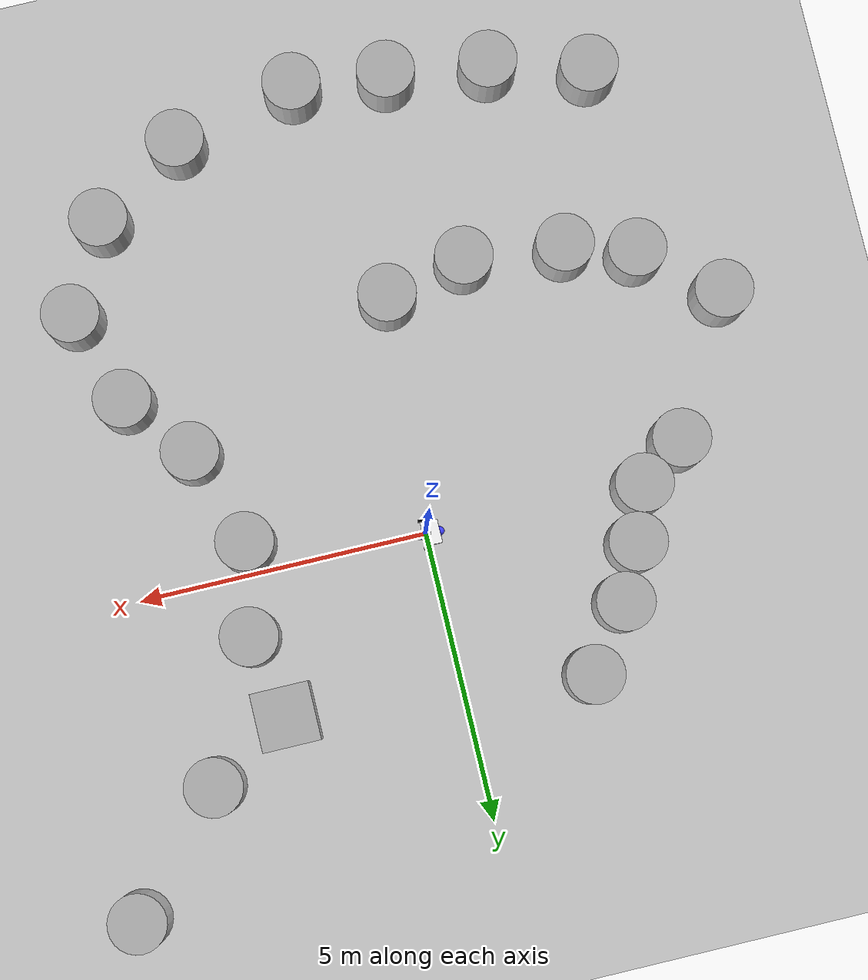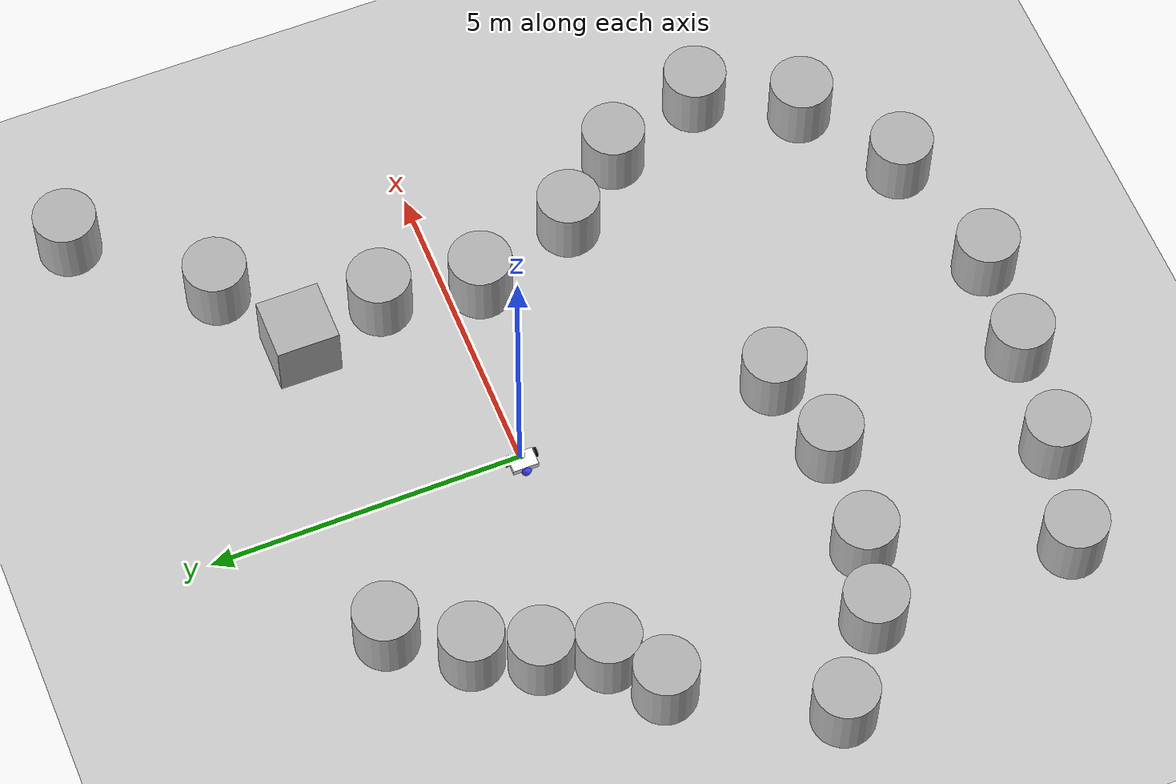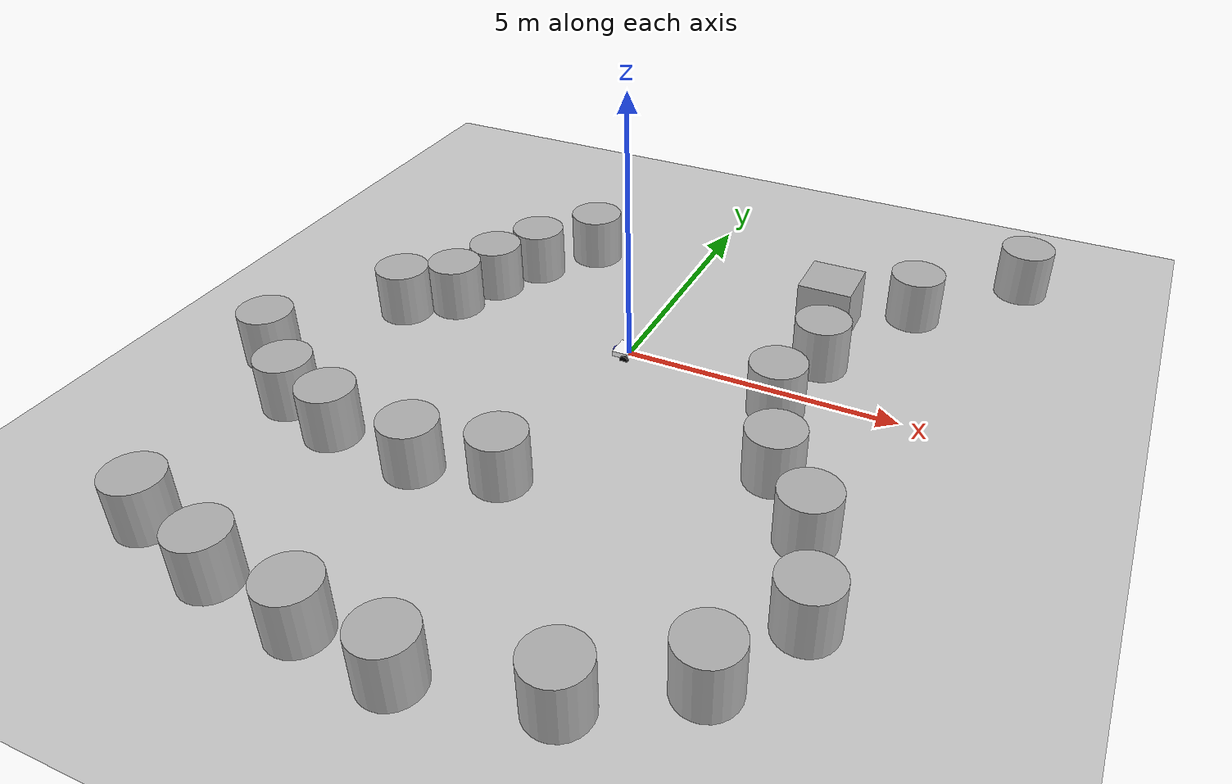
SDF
<sdf version='1.10'>
  <world name='obstacles'>
    <physics name='1ms' type='ignored'>
      <max_step_size>0.001</max_step_size>
      <real_time_factor>1</real_time_factor>
      <real_time_update_rate>1000</real_time_update_rate>
    </physics>
    <plugin name='gz::sim::systems::Physics' filename='gz-sim-physics-system'/>
    <plugin name='gz::sim::systems::UserCommands' filename='gz-sim-user-commands-system'/>
    <plugin name='gz::sim::systems::SceneBroadcaster' filename='gz-sim-scene-broadcaster-system'/>
    <plugin name='gz::sim::systems::Contact' filename='gz-sim-contact-system'/>

	   <plugin
	      filename="gz-sim-sensors-system"
	      name="gz::sim::systems::Sensors">
	      <render_engine>ogre2</render_engine>
	    </plugin>

    <!-- Moving Forward-->
	<plugin filename="gz-sim-triggered-publisher-system"
		name="gz::sim::systems::TriggeredPublisher">
	    <input type="gz.msgs.Int32" topic="/keyboard/keypress">
	    <match field="data">16777235</match>
	    </input>
	    <output type="gz.msgs.Twist" topic="/cmd_vel">
	    linear: {x: 3}, angular: {z: 0.0}
	    </output>
	</plugin>

	<plugin filename="gz-sim-triggered-publisher-system"
		name="gz::sim::systems::TriggeredPublisher">
	    <input type="gz.msgs.Int32" topic="/keyboard/keypress">
		<match field="data">16777237</match>
	    </input>
	    <output type="gz.msgs.Twist" topic="/cmd_vel">
		linear: {x: -3}, angular: {z: 0.0}
	    </output>
	</plugin>

	<plugin filename="gz-sim-triggered-publisher-system"
		name="gz::sim::systems::TriggeredPublisher">
	    <input type="gz.msgs.Int32" topic="/keyboard/keypress">
		<match field="data">16777234</match>
	    </input>
	    <output type="gz.msgs.Twist" topic="/cmd_vel">
		linear: {x: 0.0}, angular: {z: 5}
	    </output>
	</plugin>

	<plugin filename="gz-sim-triggered-publisher-system"
		name="gz::sim::systems::TriggeredPublisher">
	    <input type="gz.msgs.Int32" topic="/keyboard/keypress">
		<match field="data">16777236</match>
	    </input>
	    <output type="gz.msgs.Twist" topic="/cmd_vel">
		linear: {x: 0.0}, angular: {z: -5}
	    </output>
	</plugin>

    <gravity>0 0 -9.8000000000000007</gravity>
    <magnetic_field>5.5644999999999998e-06 2.2875799999999999e-05 -4.2388400000000002e-05</magnetic_field>
    <atmosphere type='adiabatic'/>
    <scene>
      <ambient>0.400000006 0.400000006 0.400000006 1</ambient>
      <background>0.699999988 0.699999988 0.699999988 1</background>
      <shadows>true</shadows>
    </scene>
    <model name='ground_plane'>
      <static>true</static>
      <link name='link'>
        <collision name='collision'>
          <geometry>
            <plane>
              <normal>0 0 1</normal>
              <size>100 100</size>
            </plane>
          </geometry>
          <surface>
            <friction>
              <ode/>
            </friction>
            <bounce/>
            <contact/>
          </surface>
        </collision>
        <visual name='visual'>
          <geometry>
            <plane>
              <normal>0 0 1</normal>
              <size>100 100</size>
            </plane>
          </geometry>
          <material>
            <ambient>0.800000012 0.800000012 0.800000012 1</ambient>
            <diffuse>0.800000012 0.800000012 0.800000012 1</diffuse>
            <specular>0.800000012 0.800000012 0.800000012 1</specular>
          </material>
        </visual>
        <pose>0 0 0 0 0 0</pose>
        <inertial>
          <pose>0 0 0 0 0 0</pose>
          <mass>1</mass>
          <inertia>
            <ixx>1</ixx>
            <ixy>0</ixy>
            <ixz>0</ixz>
            <iyy>1</iyy>
            <iyz>0</iyz>
            <izz>1</izz>
          </inertia>
        </inertial>
        <enable_wind>false</enable_wind>
      </link>
      <pose>0 0 0 0 0 0</pose>
      <self_collide>false</self_collide>
    </model>
    <model name='box'>
      <pose>2.9936513787700321 2.4796181568476832 0.5 0 0 0</pose>
      <link name='box_link'>
        <inertial>
          <inertia>
            <ixx>0.16666</ixx>
            <ixy>0</ixy>
            <ixz>0</ixz>
            <iyy>0.16666</iyy>
            <iyz>0</iyz>
            <izz>0.16666</izz>
          </inertia>
          <mass>1</mass>
          <pose>0 0 0 0 0 0</pose>
        </inertial>
        <collision name='box_collision'>
          <geometry>
            <box>
              <size>1 1 1</size>
            </box>
          </geometry>
          <surface>
            <friction>
              <ode/>
            </friction>
            <bounce/>
            <contact/>
          </surface>
        </collision>
        <visual name='box_visual'>
          <geometry>
            <box>
              <size>1 1 1</size>
            </box>
          </geometry>
          <material>
            <ambient>0.300000012 0.300000012 0.300000012 1</ambient>
            <diffuse>0.699999988 0.699999988 0.699999988 1</diffuse>
            <specular>1 1 1 1</specular>
          </material>
        </visual>
        <pose>0 0 0 0 0 0</pose>
        <enable_wind>false</enable_wind>
      </link>
      <static>false</static>
      <self_collide>false</self_collide>
    </model>
    <model name='cylinder'>
      <pose>3.2780801121539476 1.0477184740221883 0.5 0 0 0</pose>
      <link name='cylinder_link'>
        <inertial>
          <inertia>
            <ixx>0.14580000000000001</ixx>
            <ixy>0</ixy>
            <ixz>0</ixz>
            <iyy>0.14580000000000001</iyy>
            <iyz>0</iyz>
            <izz>0.125</izz>
          </inertia>
          <mass>1</mass>
          <pose>0 0 0 0 0 0</pose>
        </inertial>
        <collision name='cylinder_collision'>
          <geometry>
            <cylinder>
              <radius>0.5</radius>
              <length>1</length>
            </cylinder>
          </geometry>
          <surface>
            <friction>
              <ode/>
            </friction>
            <bounce/>
            <contact/>
          </surface>
        </collision>
        <visual name='cylinder_visual'>
          <geometry>
            <cylinder>
              <radius>0.5</radius>
              <length>1</length>
            </cylinder>
          </geometry>
          <material>
            <ambient>0.300000012 0.300000012 0.300000012 1</ambient>
            <diffuse>0.699999988 0.699999988 0.699999988 1</diffuse>
            <specular>1 1 1 1</specular>
          </material>
        </visual>
        <pose>0 0 0 0 0 0</pose>
        <enable_wind>false</enable_wind>
      </link>
      <static>false</static>
      <self_collide>false</self_collide>
    </model>
    <model name='cylinder_0'>
      <pose>2.9936498661354811 -0.51843391047460297 0.5 0 0 0</pose>
      <link name='cylinder_link'>
        <inertial>
          <inertia>
            <ixx>0.14580000000000001</ixx>
            <ixy>0</ixy>
            <ixz>0</ixz>
            <iyy>0.14580000000000001</iyy>
            <iyz>0</iyz>
            <izz>0.125</izz>
          </inertia>
          <mass>1</mass>
          <pose>0 0 0 0 0 0</pose>
        </inertial>
        <collision name='cylinder_collision'>
          <geometry>
            <cylinder>
              <radius>0.5</radius>
              <length>1</length>
            </cylinder>
          </geometry>
          <surface>
            <friction>
              <ode/>
            </friction>
            <bounce/>
            <contact/>
          </surface>
        </collision>
        <visual name='cylinder_visual'>
          <geometry>
            <cylinder>
              <radius>0.5</radius>
              <length>1</length>
            </cylinder>
          </geometry>
          <material>
            <ambient>0.300000012 0.300000012 0.300000012 1</ambient>
            <diffuse>0.699999988 0.699999988 0.699999988 1</diffuse>
            <specular>1 1 1 1</specular>
          </material>
        </visual>
        <pose>0 0 0 0 0 0</pose>
        <enable_wind>false</enable_wind>
      </link>
      <static>false</static>
      <self_collide>false</self_collide>
    </model>
    <model name='cylinder_1'>
      <pose>3.5417463006230321 -2.2063667398988911 0.5 0 0 0</pose>
      <link name='cylinder_link'>
        <inertial>
          <inertia>
            <ixx>0.14580000000000001</ixx>
            <ixy>0</ixy>
            <ixz>0</ixz>
            <iyy>0.14580000000000001</iyy>
            <iyz>0</iyz>
            <izz>0.125</izz>
          </inertia>
          <mass>1</mass>
        </inertial>
        <collision name='cylinder_collision'>
          <geometry>
            <cylinder>
              <radius>0.5</radius>
              <length>1</length>
            </cylinder>
          </geometry>
          <surface>
            <friction>
              <ode/>
            </friction>
            <bounce/>
            <contact/>
          </surface>
        </collision>
        <visual name='cylinder_visual'>
          <geometry>
            <cylinder>
              <radius>0.5</radius>
              <length>1</length>
            </cylinder>
          </geometry>
          <material>
            <ambient>0.300000012 0.300000012 0.300000012 1</ambient>
            <diffuse>0.699999988 0.699999988 0.699999988 1</diffuse>
            <specular>1 1 1 1</specular>
          </material>
        </visual>
      </link>
      <static>false</static>
      <self_collide>false</self_collide>
    </model>
    <model name='cylinder_2'>
      <pose>-0.29264709197542871 -4.0567506494964354 0.5 0 0 0</pose>
      <link name='cylinder_link'>
        <inertial>
          <inertia>
            <ixx>0.14580000000000001</ixx>
            <ixy>0</ixy>
            <ixz>0</ixz>
            <iyy>0.14580000000000001</iyy>
            <iyz>0</iyz>
            <izz>0.125</izz>
          </inertia>
          <mass>1</mass>
        </inertial>
        <collision name='cylinder_collision'>
          <geometry>
            <cylinder>
              <radius>0.5</radius>
              <length>1</length>
            </cylinder>
          </geometry>
          <surface>
            <friction>
              <ode/>
            </friction>
            <bounce/>
            <contact/>
          </surface>
        </collision>
        <visual name='cylinder_visual'>
          <geometry>
            <cylinder>
              <radius>0.5</radius>
              <length>1</length>
            </cylinder>
          </geometry>
          <material>
            <ambient>0.300000012 0.300000012 0.300000012 1</ambient>
            <diffuse>0.699999988 0.699999988 0.699999988 1</diffuse>
            <specular>1 1 1 1</specular>
          </material>
        </visual>
      </link>
      <static>false</static>
      <self_collide>false</self_collide>
    </model>
    <model name='cylinder_3'>
      <pose>-3.7364441269168136 0.073503863556268589 0.5 0 0 0</pose>
      <link name='cylinder_link'>
        <inertial>
          <inertia>
            <ixx>0.14580000000000001</ixx>
            <ixy>0</ixy>
            <ixz>0</ixz>
            <iyy>0.14580000000000001</iyy>
            <iyz>0</iyz>
            <izz>0.125</izz>
          </inertia>
          <mass>1</mass>
        </inertial>
        <collision name='cylinder_collision'>
          <geometry>
            <cylinder>
              <radius>0.5</radius>
              <length>1</length>
            </cylinder>
          </geometry>
          <surface>
            <friction>
              <ode/>
            </friction>
            <bounce/>
            <contact/>
          </surface>
        </collision>
        <visual name='cylinder_visual'>
          <geometry>
            <cylinder>
              <radius>0.5</radius>
              <length>1</length>
            </cylinder>
          </geometry>
          <material>
            <ambient>0.300000012 0.300000012 0.300000012 1</ambient>
            <diffuse>0.699999988 0.699999988 0.699999988 1</diffuse>
            <specular>1 1 1 1</specular>
          </material>
        </visual>
      </link>
      <static>false</static>
      <self_collide>false</self_collide>
    </model>
    <model name='cylinder_4'>
      <pose>-3.3980807020208257 1.0088354840781457 0.5 0 0 0</pose>
      <link name='cylinder_link'>
        <inertial>
          <inertia>
            <ixx>0.14580000000000001</ixx>
            <ixy>0</ixy>
            <ixz>0</ixz>
            <iyy>0.14580000000000001</iyy>
            <iyz>0</iyz>
            <izz>0.125</izz>
          </inertia>
          <mass>1</mass>
        </inertial>
        <collision name='cylinder_collision'>
          <geometry>
            <cylinder>
              <radius>0.5</radius>
              <length>1</length>
            </cylinder>
          </geometry>
          <surface>
            <friction>
              <ode/>
            </friction>
            <bounce/>
            <contact/>
          </surface>
        </collision>
        <visual name='cylinder_visual'>
          <geometry>
            <cylinder>
              <radius>0.5</radius>
              <length>1</length>
            </cylinder>
          </geometry>
          <material>
            <ambient>0.300000012 0.300000012 0.300000012 1</ambient>
            <diffuse>0.699999988 0.699999988 0.699999988 1</diffuse>
            <specular>1 1 1 1</specular>
          </material>
        </visual>
      </link>
      <static>false</static>
      <self_collide>false</self_collide>
    </model>
    <model name='cylinder_5'>
      <pose>-2.9554009128615899 1.9327412748815394 0.5 0 0 0</pose>
      <link name='cylinder_link'>
        <inertial>
          <inertia>
            <ixx>0.14580000000000001</ixx>
            <ixy>0</ixy>
            <ixz>0</ixz>
            <iyy>0.14580000000000001</iyy>
            <iyz>0</iyz>
            <izz>0.125</izz>
          </inertia>
          <mass>1</mass>
        </inertial>
        <collision name='cylinder_collision'>
          <geometry>
            <cylinder>
              <radius>0.5</radius>
              <length>1</length>
            </cylinder>
          </geometry>
          <surface>
            <friction>
              <ode/>
            </friction>
            <bounce/>
            <contact/>
          </surface>
        </collision>
        <visual name='cylinder_visual'>
          <geometry>
            <cylinder>
              <radius>0.5</radius>
              <length>1</length>
            </cylinder>
          </geometry>
          <material>
            <ambient>0.300000012 0.300000012 0.300000012 1</ambient>
            <diffuse>0.699999988 0.699999988 0.699999988 1</diffuse>
            <specular>1 1 1 1</specular>
          </material>
        </visual>
      </link>
      <static>false</static>
      <self_collide>false</self_collide>
    </model>
    <model name='cylinder_6'>
      <pose>-2.1750945004891538 2.9892591731895188 0.5 0 0 0</pose>
      <link name='cylinder_link'>
        <inertial>
          <inertia>
            <ixx>0.14580000000000001</ixx>
            <ixy>0</ixy>
            <ixz>0</ixz>
            <iyy>0.14580000000000001</iyy>
            <iyz>0</iyz>
            <izz>0.125</izz>
          </inertia>
          <mass>1</mass>
        </inertial>
        <collision name='cylinder_collision'>
          <geometry>
            <cylinder>
              <radius>0.5</radius>
              <length>1</length>
            </cylinder>
          </geometry>
          <surface>
            <friction>
              <ode/>
            </friction>
            <bounce/>
            <contact/>
          </surface>
        </collision>
        <visual name='cylinder_visual'>
          <geometry>
            <cylinder>
              <radius>0.5</radius>
              <length>1</length>
            </cylinder>
          </geometry>
          <material>
            <ambient>0.300000012 0.300000012 0.300000012 1</ambient>
            <diffuse>0.699999988 0.699999988 0.699999988 1</diffuse>
            <specular>1 1 1 1</specular>
          </material>
        </visual>
      </link>
      <static>false</static>
      <self_collide>false</self_collide>
    </model>
    <model name='cylinder_7'>
      <pose>-4.5268021579215159 -0.51124168392001335 0.5 0 0 0</pose>
      <link name='cylinder_link'>
        <inertial>
          <inertia>
            <ixx>0.14580000000000001</ixx>
            <ixy>0</ixy>
            <ixz>0</ixz>
            <iyy>0.14580000000000001</iyy>
            <iyz>0</iyz>
            <izz>0.125</izz>
          </inertia>
          <mass>1</mass>
        </inertial>
        <collision name='cylinder_collision'>
          <geometry>
            <cylinder>
              <radius>0.5</radius>
              <length>1</length>
            </cylinder>
          </geometry>
          <surface>
            <friction>
              <ode/>
            </friction>
            <bounce/>
            <contact/>
          </surface>
        </collision>
        <visual name='cylinder_visual'>
          <geometry>
            <cylinder>
              <radius>0.5</radius>
              <length>1</length>
            </cylinder>
          </geometry>
          <material>
            <ambient>0.300000012 0.300000012 0.300000012 1</ambient>
            <diffuse>0.699999988 0.699999988 0.699999988 1</diffuse>
            <specular>1 1 1 1</specular>
          </material>
        </visual>
      </link>
      <static>false</static>
      <self_collide>false</self_collide>
    </model>
    <model name='cylinder_8'>
      <pose>-1.7026880066687706 -4.3772045929497114 0.5 0 0 0</pose>
      <link name='cylinder_link'>
        <inertial>
          <inertia>
            <ixx>0.14580000000000001</ixx>
            <ixy>0</ixy>
            <ixz>0</ixz>
            <iyy>0.14580000000000001</iyy>
            <iyz>0</iyz>
            <izz>0.125</izz>
          </inertia>
          <mass>1</mass>
        </inertial>
        <collision name='cylinder_collision'>
          <geometry>
            <cylinder>
              <radius>0.5</radius>
              <length>1</length>
            </cylinder>
          </geometry>
          <surface>
            <friction>
              <ode/>
            </friction>
            <bounce/>
            <contact/>
          </surface>
        </collision>
        <visual name='cylinder_visual'>
          <geometry>
            <cylinder>
              <radius>0.5</radius>
              <length>1</length>
            </cylinder>
          </geometry>
          <material>
            <ambient>0.300000012 0.300000012 0.300000012 1</ambient>
            <diffuse>0.699999988 0.699999988 0.699999988 1</diffuse>
            <specular>1 1 1 1</specular>
          </material>
        </visual>
      </link>
      <static>false</static>
      <self_collide>false</self_collide>
    </model>
    <model name='cylinder_9'>
      <pose>-3.4192076754294458 -4.1947912403373291 0.5 0 0 0</pose>
      <link name='cylinder_link'>
        <inertial>
          <inertia>
            <ixx>0.14580000000000001</ixx>
            <ixy>0</ixy>
            <ixz>0</ixz>
            <iyy>0.14580000000000001</iyy>
            <iyz>0</iyz>
            <izz>0.125</izz>
          </inertia>
          <mass>1</mass>
        </inertial>
        <collision name='cylinder_collision'>
          <geometry>
            <cylinder>
              <radius>0.5</radius>
              <length>1</length>
            </cylinder>
          </geometry>
          <surface>
            <friction>
              <ode/>
            </friction>
            <bounce/>
            <contact/>
          </surface>
        </collision>
        <visual name='cylinder_visual'>
          <geometry>
            <cylinder>
              <radius>0.5</radius>
              <length>1</length>
            </cylinder>
          </geometry>
          <material>
            <ambient>0.300000012 0.300000012 0.300000012 1</ambient>
            <diffuse>0.699999988 0.699999988 0.699999988 1</diffuse>
            <specular>1 1 1 1</specular>
          </material>
        </visual>
      </link>
      <static>false</static>
      <self_collide>false</self_collide>
    </model>
    <model name='cylinder_10'>
      <pose>-4.5883211947311082 -3.8308697637389448 0.5 0 0 0</pose>
      <link name='cylinder_link'>
        <inertial>
          <inertia>
            <ixx>0.14580000000000001</ixx>
            <ixy>0</ixy>
            <ixz>0</ixz>
            <iyy>0.14580000000000001</iyy>
            <iyz>0</iyz>
            <izz>0.125</izz>
          </inertia>
          <mass>1</mass>
        </inertial>
        <collision name='cylinder_collision'>
          <geometry>
            <cylinder>
              <radius>0.5</radius>
              <length>1</length>
            </cylinder>
          </geometry>
          <surface>
            <friction>
              <ode/>
            </friction>
            <bounce/>
            <contact/>
          </surface>
        </collision>
        <visual name='cylinder_visual'>
          <geometry>
            <cylinder>
              <radius>0.5</radius>
              <length>1</length>
            </cylinder>
          </geometry>
          <material>
            <ambient>0.300000012 0.300000012 0.300000012 1</ambient>
            <diffuse>0.699999988 0.699999988 0.699999988 1</diffuse>
            <specular>1 1 1 1</specular>
          </material>
        </visual>
      </link>
      <static>false</static>
      <self_collide>false</self_collide>
    </model>
    <model name='cylinder_11'>
      <pose>-5.8409336358566808 -2.8065884830670731 0.5 0 0 0</pose>
      <link name='cylinder_link'>
        <inertial>
          <inertia>
            <ixx>0.14580000000000001</ixx>
            <ixy>0</ixy>
            <ixz>0</ixz>
            <iyy>0.14580000000000001</iyy>
            <iyz>0</iyz>
            <izz>0.125</izz>
          </inertia>
          <mass>1</mass>
        </inertial>
        <collision name='cylinder_collision'>
          <geometry>
            <cylinder>
              <radius>0.5</radius>
              <length>1</length>
            </cylinder>
          </geometry>
          <surface>
            <friction>
              <ode/>
            </friction>
            <bounce/>
            <contact/>
          </surface>
        </collision>
        <visual name='cylinder_visual'>
          <geometry>
            <cylinder>
              <radius>0.5</radius>
              <length>1</length>
            </cylinder>
          </geometry>
          <material>
            <ambient>0.300000012 0.300000012 0.300000012 1</ambient>
            <diffuse>0.699999988 0.699999988 0.699999988 1</diffuse>
            <specular>1 1 1 1</specular>
          </material>
        </visual>
      </link>
      <static>false</static>
      <self_collide>false</self_collide>
    </model>
    <model name='cylinder_12'>
      <pose>4.4102869636086197 3.3350607228576079 0.5 0 0 0</pose>
      <link name='cylinder_link'>
        <inertial>
          <inertia>
            <ixx>0.14580000000000001</ixx>
            <ixy>0</ixy>
            <ixz>0</ixz>
            <iyy>0.14580000000000001</iyy>
            <iyz>0</iyz>
            <izz>0.125</izz>
          </inertia>
          <mass>1</mass>
        </inertial>
        <collision name='cylinder_collision'>
          <geometry>
            <cylinder>
              <radius>0.5</radius>
              <length>1</length>
            </cylinder>
          </geometry>
          <surface>
            <friction>
              <ode/>
            </friction>
            <bounce/>
            <contact/>
          </surface>
        </collision>
        <visual name='cylinder_visual'>
          <geometry>
            <cylinder>
              <radius>0.5</radius>
              <length>1</length>
            </cylinder>
          </geometry>
          <material>
            <ambient>0.300000012 0.300000012 0.300000012 1</ambient>
            <diffuse>0.699999988 0.699999988 0.699999988 1</diffuse>
            <specular>1 1 1 1</specular>
          </material>
        </visual>
      </link>
      <static>false</static>
      <self_collide>false</self_collide>
    </model>
    <model name='cylinder_13'>
      <pose>6.1205690099241359 5.206047206925879 0.5 0 0 0</pose>
      <link name='cylinder_link'>
        <inertial>
          <inertia>
            <ixx>0.14580000000000001</ixx>
            <ixy>0</ixy>
            <ixz>0</ixz>
            <iyy>0.14580000000000001</iyy>
            <iyz>0</iyz>
            <izz>0.125</izz>
          </inertia>
          <mass>1</mass>
        </inertial>
        <collision name='cylinder_collision'>
          <geometry>
            <cylinder>
              <radius>0.5</radius>
              <length>1</length>
            </cylinder>
          </geometry>
          <surface>
            <friction>
              <ode/>
            </friction>
            <bounce/>
            <contact/>
          </surface>
        </collision>
        <visual name='cylinder_visual'>
          <geometry>
            <cylinder>
              <radius>0.5</radius>
              <length>1</length>
            </cylinder>
          </geometry>
          <material>
            <ambient>0.300000012 0.300000012 0.300000012 1</ambient>
            <diffuse>0.699999988 0.699999988 0.699999988 1</diffuse>
            <specular>1 1 1 1</specular>
          </material>
        </visual>
      </link>
      <static>false</static>
      <self_collide>false</self_collide>
    </model>
    <model name='cylinder_14'>
      <pose>4.4529545639889498 -3.3340084945595936 0.5 0 0 0</pose>
      <link name='cylinder_link'>
        <inertial>
          <inertia>
            <ixx>0.14580000000000001</ixx>
            <ixy>0</ixy>
            <ixz>0</ixz>
            <iyy>0.14580000000000001</iyy>
            <iyz>0</iyz>
            <izz>0.125</izz>
          </inertia>
          <mass>1</mass>
        </inertial>
        <collision name='cylinder_collision'>
          <geometry>
            <cylinder>
              <radius>0.5</radius>
              <length>1</length>
            </cylinder>
          </geometry>
          <surface>
            <friction>
              <ode/>
            </friction>
            <bounce/>
            <contact/>
          </surface>
        </collision>
        <visual name='cylinder_visual'>
          <geometry>
            <cylinder>
              <radius>0.5</radius>
              <length>1</length>
            </cylinder>
          </geometry>
          <material>
            <ambient>0.300000012 0.300000012 0.300000012 1</ambient>
            <diffuse>0.699999988 0.699999988 0.699999988 1</diffuse>
            <specular>1 1 1 1</specular>
          </material>
        </visual>
      </link>
      <static>false</static>
      <self_collide>false</self_collide>
    </model>
    <model name='cylinder_15'>
      <pose>4.9829780157068768 -4.9486904192357404 0.5 0 0 0</pose>
      <link name='cylinder_link'>
        <inertial>
          <inertia>
            <ixx>0.14580000000000001</ixx>
            <ixy>0</ixy>
            <ixz>0</ixz>
            <iyy>0.14580000000000001</iyy>
            <iyz>0</iyz>
            <izz>0.125</izz>
          </inertia>
          <mass>1</mass>
        </inertial>
        <collision name='cylinder_collision'>
          <geometry>
            <cylinder>
              <radius>0.5</radius>
              <length>1</length>
            </cylinder>
          </geometry>
          <surface>
            <friction>
              <ode/>
            </friction>
            <bounce/>
            <contact/>
          </surface>
        </collision>
        <visual name='cylinder_visual'>
          <geometry>
            <cylinder>
              <radius>0.5</radius>
              <length>1</length>
            </cylinder>
          </geometry>
          <material>
            <ambient>0.300000012 0.300000012 0.300000012 1</ambient>
            <diffuse>0.699999988 0.699999988 0.699999988 1</diffuse>
            <specular>1 1 1 1</specular>
          </material>
        </visual>
      </link>
      <static>false</static>
      <self_collide>false</self_collide>
    </model>
    <model name='cylinder_16'>
      <pose>4.1648388897285358 -6.4434104621617516 0.5 0 0 0</pose>
      <link name='cylinder_link'>
        <inertial>
          <inertia>
            <ixx>0.14580000000000001</ixx>
            <ixy>0</ixy>
            <ixz>0</ixz>
            <iyy>0.14580000000000001</iyy>
            <iyz>0</iyz>
            <izz>0.125</izz>
          </inertia>
          <mass>1</mass>
        </inertial>
        <collision name='cylinder_collision'>
          <geometry>
            <cylinder>
              <radius>0.5</radius>
              <length>1</length>
            </cylinder>
          </geometry>
          <surface>
            <friction>
              <ode/>
            </friction>
            <bounce/>
            <contact/>
          </surface>
        </collision>
        <visual name='cylinder_visual'>
          <geometry>
            <cylinder>
              <radius>0.5</radius>
              <length>1</length>
            </cylinder>
          </geometry>
          <material>
            <ambient>0.300000012 0.300000012 0.300000012 1</ambient>
            <diffuse>0.699999988 0.699999988 0.699999988 1</diffuse>
            <specular>1 1 1 1</specular>
          </material>
        </visual>
      </link>
      <static>false</static>
      <self_collide>false</self_collide>
    </model>
    <model name='cylinder_17'>
      <pose>2.6016227131089487 -7.4800479181039865 0.5 0 0 0</pose>
      <link name='cylinder_link'>
        <inertial>
          <inertia>
            <ixx>0.14580000000000001</ixx>
            <ixy>0</ixy>
            <ixz>0</ixz>
            <iyy>0.14580000000000001</iyy>
            <iyz>0</iyz>
            <izz>0.125</izz>
          </inertia>
          <mass>1</mass>
        </inertial>
        <collision name='cylinder_collision'>
          <geometry>
            <cylinder>
              <radius>0.5</radius>
              <length>1</length>
            </cylinder>
          </geometry>
          <surface>
            <friction>
              <ode/>
            </friction>
            <bounce/>
            <contact/>
          </surface>
        </collision>
        <visual name='cylinder_visual'>
          <geometry>
            <cylinder>
              <radius>0.5</radius>
              <length>1</length>
            </cylinder>
          </geometry>
          <material>
            <ambient>0.300000012 0.300000012 0.300000012 1</ambient>
            <diffuse>0.699999988 0.699999988 0.699999988 1</diffuse>
            <specular>1 1 1 1</specular>
          </material>
        </visual>
      </link>
      <static>false</static>
      <self_collide>false</self_collide>
    </model>
    <model name='cylinder_18'>
      <pose>0.45455522565554674 -7.9827741770514784 0.5 0 0 0</pose>
      <link name='cylinder_link'>
        <inertial>
          <inertia>
            <ixx>0.14580000000000001</ixx>
            <ixy>0</ixy>
            <ixz>0</ixz>
            <iyy>0.14580000000000001</iyy>
            <iyz>0</iyz>
            <izz>0.125</izz>
          </inertia>
          <mass>1</mass>
        </inertial>
        <collision name='cylinder_collision'>
          <geometry>
            <cylinder>
              <radius>0.5</radius>
              <length>1</length>
            </cylinder>
          </geometry>
          <surface>
            <friction>
              <ode/>
            </friction>
            <bounce/>
            <contact/>
          </surface>
        </collision>
        <visual name='cylinder_visual'>
          <geometry>
            <cylinder>
              <radius>0.5</radius>
              <length>1</length>
            </cylinder>
          </geometry>
          <material>
            <ambient>0.300000012 0.300000012 0.300000012 1</ambient>
            <diffuse>0.699999988 0.699999988 0.699999988 1</diffuse>
            <specular>1 1 1 1</specular>
          </material>
        </visual>
      </link>
      <static>false</static>
      <self_collide>false</self_collide>
    </model>
    <model name='cylinder_19'>
      <pose>-1.159171321764294 -7.8176401004271927 0.5 0 0 0</pose>
      <link name='cylinder_link'>
        <inertial>
          <inertia>
            <ixx>0.14580000000000001</ixx>
            <ixy>0</ixy>
            <ixz>0</ixz>
            <iyy>0.14580000000000001</iyy>
            <iyz>0</iyz>
            <izz>0.125</izz>
          </inertia>
          <mass>1</mass>
        </inertial>
        <collision name='cylinder_collision'>
          <geometry>
            <cylinder>
              <radius>0.5</radius>
              <length>1</length>
            </cylinder>
          </geometry>
          <surface>
            <friction>
              <ode/>
            </friction>
            <bounce/>
            <contact/>
          </surface>
        </collision>
        <visual name='cylinder_visual'>
          <geometry>
            <cylinder>
              <radius>0.5</radius>
              <length>1</length>
            </cylinder>
          </geometry>
          <material>
            <ambient>0.300000012 0.300000012 0.300000012 1</ambient>
            <diffuse>0.699999988 0.699999988 0.699999988 1</diffuse>
            <specular>1 1 1 1</specular>
          </material>
        </visual>
      </link>
      <static>false</static>
      <self_collide>false</self_collide>
    </model>
    <model name='cylinder_20'>
      <pose>-2.8997959191675324 -7.5839678479467789 0.5 0 0 0</pose>
      <link name='cylinder_link'>
        <inertial>
          <inertia>
            <ixx>0.14580000000000001</ixx>
            <ixy>0</ixy>
            <ixz>0</ixz>
            <iyy>0.14580000000000001</iyy>
            <iyz>0</iyz>
            <izz>0.125</izz>
          </inertia>
          <mass>1</mass>
        </inertial>
        <collision name='cylinder_collision'>
          <geometry>
            <cylinder>
              <radius>0.5</radius>
              <length>1</length>
            </cylinder>
          </geometry>
          <surface>
            <friction>
              <ode/>
            </friction>
            <bounce/>
            <contact/>
          </surface>
        </collision>
        <visual name='cylinder_visual'>
          <geometry>
            <cylinder>
              <radius>0.5</radius>
              <length>1</length>
            </cylinder>
          </geometry>
          <material>
            <ambient>0.300000012 0.300000012 0.300000012 1</ambient>
            <diffuse>0.699999988 0.699999988 0.699999988 1</diffuse>
            <specular>1 1 1 1</specular>
          </material>
        </visual>
      </link>
      <static>false</static>
      <self_collide>false</self_collide>
    </model>
    <model name='cylinder_21'>
      <pose>-4.5626676797778121 -7.1126169465083064 0.5 0 0 0</pose>
      <link name='cylinder_link'>
        <inertial>
          <inertia>
            <ixx>0.14580000000000001</ixx>
            <ixy>0</ixy>
            <ixz>0</ixz>
            <iyy>0.14580000000000001</iyy>
            <iyz>0</iyz>
            <izz>0.125</izz>
          </inertia>
          <mass>1</mass>
        </inertial>
        <collision name='cylinder_collision'>
          <geometry>
            <cylinder>
              <radius>0.5</radius>
              <length>1</length>
            </cylinder>
          </geometry>
          <surface>
            <friction>
              <ode/>
            </friction>
            <bounce/>
            <contact/>
          </surface>
        </collision>
        <visual name='cylinder_visual'>
          <geometry>
            <cylinder>
              <radius>0.5</radius>
              <length>1</length>
            </cylinder>
          </geometry>
          <material>
            <ambient>0.300000012 0.300000012 0.300000012 1</ambient>
            <diffuse>0.699999988 0.699999988 0.699999988 1</diffuse>
            <specular>1 1 1 1</specular>
          </material>
        </visual>
      </link>
      <static>false</static>
      <self_collide>false</self_collide>
    </model>
    <light name='sun' type='directional'>
      <pose>0 0 10 0 0 0</pose>
      <cast_shadows>true</cast_shadows>
      <intensity>1</intensity>
      <direction>-0.5 0.10000000000000001 -0.90000000000000002</direction>
      <diffuse>0.800000012 0.800000012 0.800000012 1</diffuse>
      <specular>0.200000003 0.200000003 0.200000003 1</specular>
      <attenuation>
        <range>1000</range>
        <linear>0.01</linear>
        <constant>0.90000000000000002</constant>
        <quadratic>0.001</quadratic>
      </attenuation>
      <spot>
        <inner_angle>0</inner_angle>
        <outer_angle>0</outer_angle>
        <falloff>0</falloff>
      </spot>
    </light>

    <model name='botwheel'>
    <link name='base_link'>
      <inertial>
        <pose>-0.089285714285714288 0 0.054047619047619053 0 0 0</pose>
        <mass>1.05</mass>
        <inertia>
          <ixx>0.01350925595238095</ixx>
          <ixy>0</ixy>
          <ixz>-0.00058821428571428479</ixz>
          <iyy>0.014536011904761909</iyy>
          <iyz>0</iyz>
          <izz>0.02150717261904762</izz>
        </inertia>
      </inertial>
      <collision name='botwheel_fixed_joint_lump__chassis_collision'>
        <pose>-0.099999999999999992 0 0.050000000000000003 0 0 0</pose>
        <geometry>
          <box>
            <size>0.29999999999999999 0.41499999999999998 0.10000000000000001</size>
          </box>
        </geometry>
      </collision>
      <collision name='botwheel_fixed_joint_lump__caster_wheel_collision_1'>
        <pose>-0.25 0 0 0 0 0</pose>
        <geometry>
          <sphere>
            <radius>0.080000000000000002</radius>
          </sphere>
        </geometry>
        <surface>
          <contact>
            <ode/>
          </contact>
          <friction>
            <ode>
              <mu>0.0001</mu>
              <mu2>0.0001</mu2>
            </ode>
          </friction>
        </surface>
      </collision>
      <collision name='botwheel_fixed_joint_lump__caster_wheel2_collision_2'>
        <pose>0.080000000000000002 0 0 0 0 0</pose>
        <geometry>
          <sphere>
            <radius>0.080000000000000002</radius>
          </sphere>
        </geometry>
        <surface>
          <contact>
            <ode/>
          </contact>
          <friction>
            <ode>
              <mu>0.0001</mu>
              <mu2>0.0001</mu2>
            </ode>
          </friction>
        </surface>
      </collision>
      <collision name='botwheel_fixed_joint_lump__laser_frame_collision_3'>
        <pose>-0.044999999999999998 0 0.14499999999999999 0 0 0</pose>
        <geometry>
          <cylinder>
            <length>0.044999999999999998</length>
            <radius>0.080000000000000002</radius>
          </cylinder>
        </geometry>
        <surface>
          <contact>
            <ode/>
          </contact>
          <friction>
            <ode/>
          </friction>
        </surface>
      </collision>
      <visual name='botwheel_fixed_joint_lump__chassis_visual'>
        <pose>-0.099999999999999992 0 0.050000000000000003 0 0 0</pose>
        <geometry>
          <box>
            <size>0.29999999999999999 0.41499999999999998 0.10000000000000001</size>
          </box>
        </geometry>
        <material>
          <diffuse>1 1 1 1</diffuse>
          <ambient>1 1 1 1</ambient>
        </material>
      </visual>
      <visual name='botwheel_fixed_joint_lump__camera_link_visual_1'>
        <pose>0.055 0 0.10000000000000001 0 0 0</pose>
        <geometry>
          <box>
            <size>0.01 0.029999999999999999 0.029999999999999999</size>
          </box>
        </geometry>
      </visual>
      <visual name='botwheel_fixed_joint_lump__caster_wheel_visual_2'>
        <pose>-0.25 0 0 0 0 0</pose>
        <geometry>
          <sphere>
            <radius>0.080000000000000002</radius>
          </sphere>
        </geometry>
        <material>
          <diffuse>0.25 0.25 1 1</diffuse>
          <ambient>0.25 0.25 1 1</ambient>
        </material>
      </visual>
      <visual name='botwheel_fixed_joint_lump__caster_wheel2_visual_3'>
        <pose>0.080000000000000002 0 0 0 0 0</pose>
        <geometry>
          <sphere>
            <radius>0.080000000000000002</radius>
          </sphere>
        </geometry>
        <material>
          <diffuse>0.25 0.25 1 1</diffuse>
          <ambient>0.25 0.25 1 1</ambient>
        </material>
      </visual>
      <visual name='botwheel_fixed_joint_lump__laser_frame_visual_4'>
        <pose>-0.044999999999999998 0 0.14499999999999999 0 0 0</pose>
        <geometry>
          <cylinder>
            <length>0.044999999999999998</length>
            <radius>0.050000000000000003</radius>
          </cylinder>
        </geometry>
      </visual>
      <sensor name='rgbd_camera' type='rgbd_camera'>
        <visualize>true</visualize>
        <update_rate>30</update_rate>
        <enable_metrics>true</enable_metrics>
        <camera>
          <horizontal_fov>1.089</horizontal_fov>
          <image>
            <format>R8G8B8</format>
            <width>640</width>
            <height>480</height>
          </image>
          <clip>
            <near>0.050000000000000003</near>
            <far>8</far>
          </clip>
        </camera>
        <topic>rgbd_camera</topic>
        <pose>0.055 0 0.10000000000000001 0 0 0</pose>
      </sensor>
      <sensor name='laser' type='gpu_lidar'>
        <topic>lidar</topic>
        <visualize>true</visualize>
        <update_rate>10</update_rate>
        <always_on>true</always_on>
        <ray>
          <scan>
            <horizontal>
              <samples>360</samples>
              <resolution>1</resolution>
              <min_angle>-3.1400000000000001</min_angle>
              <max_angle>3.1400000000000001</max_angle>
            </horizontal>
          </scan>
          <range>
            <min>0.29999999999999999</min>
            <max>12</max>
            <resolution>0.01</resolution>
          </range>
        </ray>
        <pose>-0.044999999999999998 0 0.14499999999999999 0 0 0</pose>
      </sensor>
    </link>
    <joint name='left_wheel_joint' type='revolute'>
      <pose relative_to='base_link'>0 0.24249999999999999 0 -1.5707963267948959 0 0</pose>
      <parent>base_link</parent>
      <child>left_wheel</child>
      <axis>
        <xyz>0 0 1</xyz>
        <limit>
          <lower>-inf</lower>
          <upper>inf</upper>
        </limit>
        <dynamics>
          <spring_reference>0</spring_reference>
          <spring_stiffness>0</spring_stiffness>
        </dynamics>
      </axis>
    </joint>
    <link name='left_wheel'>
      <pose relative_to='left_wheel_joint'>0 0 0 0 0 0</pose>
      <inertial>
        <pose>0 0 0 0 0 0</pose>
        <mass>0.14999999999999999</mass>
        <inertia>
          <ixx>0.00011375</ixx>
          <ixy>0</ixy>
          <ixz>0</ixz>
          <iyy>0.00011375</iyy>
          <iyz>0</iyz>
          <izz>0.0001875</izz>
        </inertia>
      </inertial>
      <collision name='left_wheel_collision'>
        <pose>0 0 0 0 0 0</pose>
        <geometry>
          <cylinder>
            <length>0.044999999999999998</length>
            <radius>0.080000000000000002</radius>
          </cylinder>
        </geometry>
      </collision>
      <visual name='left_wheel_visual'>
        <pose>0 0 0 0 0 0</pose>
        <geometry>
          <cylinder>
            <length>0.044999999999999998</length>
            <radius>0.080000000000000002</radius>
          </cylinder>
        </geometry>
        <material>
          <diffuse>0 0 0 1</diffuse>
          <ambient>0 0 0 1</ambient>
        </material>
      </visual>
    </link>
    <joint name='right_wheel_joint' type='revolute'>
      <pose relative_to='base_link'>0 -0.24249999999999999 0 1.5707963267948959 0 0</pose>
      <parent>base_link</parent>
      <child>right_wheel</child>
      <axis>
        <xyz>0 0 -1</xyz>
        <limit>
          <lower>-inf</lower>
          <upper>inf</upper>
        </limit>
        <dynamics>
          <spring_reference>0</spring_reference>
          <spring_stiffness>0</spring_stiffness>
        </dynamics>
      </axis>
    </joint>
    <link name='right_wheel'>
      <pose relative_to='right_wheel_joint'>0 0 0 0 0 0</pose>
      <inertial>
        <pose>0 0 0 0 0 0</pose>
        <mass>0.14999999999999999</mass>
        <inertia>
          <ixx>0.00011375</ixx>
          <ixy>0</ixy>
          <ixz>0</ixz>
          <iyy>0.00011375</iyy>
          <iyz>0</iyz>
          <izz>0.0001875</izz>
        </inertia>
      </inertial>
      <collision name='right_wheel_collision'>
        <pose>0 0 0 0 0 0</pose>
        <geometry>
          <cylinder>
            <length>0.044999999999999998</length>
            <radius>0.080000000000000002</radius>
          </cylinder>
        </geometry>
      </collision>
      <visual name='right_wheel_visual'>
        <pose>0 0 0 0 0 0</pose>
        <geometry>
          <cylinder>
            <length>0.044999999999999998</length>
            <radius>0.080000000000000002</radius>
          </cylinder>
        </geometry>
        <material>
          <diffuse>0 0 0 1</diffuse>
          <ambient>0 0 0 1</ambient>
        </material>
      </visual>
    </link>

    <plugin name='gz::sim::systems::DiffDrive' filename='gz-sim-diff-drive-system'>
      <alwaysOn>true</alwaysOn>
      <left_joint>left_wheel_joint</left_joint>
      <right_joint>right_wheel_joint</right_joint>
      <wheel_separation>0.4850</wheel_separation>
      <wheel_diameter>0.1</wheel_diameter>
      <max_wheel_torque>200</max_wheel_torque>
      <max_wheel_acceleration>10.0</max_wheel_acceleration>
      <topic>cmd_vel</topic>
      <robotBaseFrame>base_link</robotBaseFrame>
      <odom_publish_frequency>1</odom_publish_frequency>
      <publish_odom>true</publish_odom>
      <publish_odom_tf>true</publish_odom_tf>
      <publish_wheel_tf>true</publish_wheel_tf>
    </plugin>

    <plugin name='gz::sim::systems::TriggeredPublisher' filename='gz-sim-triggered-publisher-system'>
      <input topic='/keyboard/keypress' type='gz.msgs.Int32'>
        <match field='data'>16777235</match>
      </input>
      <output topic='/cmd_vel' type='gz.msgs.Twist'>linear: {x: 3}, angular: {z: 0.0}</output>
    </plugin>
    <plugin name='gz::sim::systems::TriggeredPublisher' filename='gz-sim-triggered-publisher-system'>
      <input topic='/keyboard/keypress' type='gz.msgs.Int32'>
        <match field='data'>16777237</match>
      </input>
      <output topic='/cmd_vel' type='gz.msgs.Twist'>linear: {x: -3}, angular: {z: 0.0}</output>
    </plugin>
    <plugin name='gz::sim::systems::TriggeredPublisher' filename='gz-sim-triggered-publisher-system'>
      <input topic='/keyboard/keypress' type='gz.msgs.Int32'>
        <match field='data'>16777234</match>
      </input>
      <output topic='/cmd_vel' type='gz.msgs.Twist'>linear: {x: 0.0}, angular: {z: 5}</output>
    </plugin>
    <plugin name='gz::sim::systems::TriggeredPublisher' filename='gz-sim-triggered-publisher-system'>
      <input topic='/keyboard/keypress' type='gz.msgs.Int32'>
        <match field='data'>16777236</match>
      </input>
      <output topic='/cmd_vel' type='gz.msgs.Twist'>linear: {x: 0.0}, angular: {z: -5}</output>
    </plugin>
    <plugin name='gz::sim::systems::JointStatePublisher' filename='gz-sim-joint-state-publisher-system'/>
    <plugin filename="ignition-gazebo-joint-state-publisher-system" name="ignition::gazebo::systems::JointStatePublisher"/>
    <plugin name='gz::sim::systems::PosePublisher' filename='gz-sim-pose-publisher-system'>
      <static_publisher>true</static_publisher>
      <static_update_frequency>1</static_update_frequency>
      <publish_link_pose>true</publish_link_pose>
      <use_pose_vector_msg>true</use_pose_vector_msg>
    </plugin>
    <plugin name='gz::sim::systems::OdometryPublisher' filename='gz-sim-odometry-publisher-system'>
      <odom_frame>odom</odom_frame>
      <robot_base_frame>base_link</robot_base_frame>
    </plugin>
    <frame name='camera_optical_joint' attached_to='camera_link'>
      <pose>0 0 0 -1.5707963267948959 -5.5511151231257827e-17 -1.5707963267948959</pose>
    </frame>
    <frame name='camera_link_optical' attached_to='camera_optical_joint'>
      <pose>0 0 0 0 0 0</pose>
    </frame>
    <frame name='camera_joint' attached_to='chassis'>
      <pose>0.0050000000000000001 0 0.10000000000000001 0 0 0</pose>
    </frame>
    <frame name='camera_link' attached_to='camera_joint'>
      <pose>0 0 0 0 0 0</pose>
    </frame>
    <frame name='caster_wheel_joint' attached_to='chassis'>
      <pose>-0.29999999999999999 0 0 0 0 0</pose>
    </frame>
    <frame name='caster_wheel' attached_to='caster_wheel_joint'>
      <pose>0 0 0 0 0 0</pose>
    </frame>
    <frame name='caster_wheel_joint2' attached_to='chassis'>
      <pose>0.029999999999999999 0 0 0 0 0</pose>
    </frame>
    <frame name='caster_wheel2' attached_to='caster_wheel_joint2'>
      <pose>0 0 0 0 0 0</pose>
    </frame>
    <frame name='laser_joint' attached_to='chassis'>
      <pose>-0.095000000000000001 0 0.14499999999999999 0 0 0</pose>
    </frame>
    <frame name='laser_frame' attached_to='laser_joint'>
      <pose>0 0 0 0 0 0</pose>
    </frame>
    <frame name='chassis_joint' attached_to='base_link'>
      <pose>0.050000000000000003 0 0 0 0 0</pose>
    </frame>
    <frame name='chassis' attached_to='chassis_joint'>
      <pose>0 0 0 0 0 0</pose>
    </frame>
  </model>

  </world>
</sdf>
